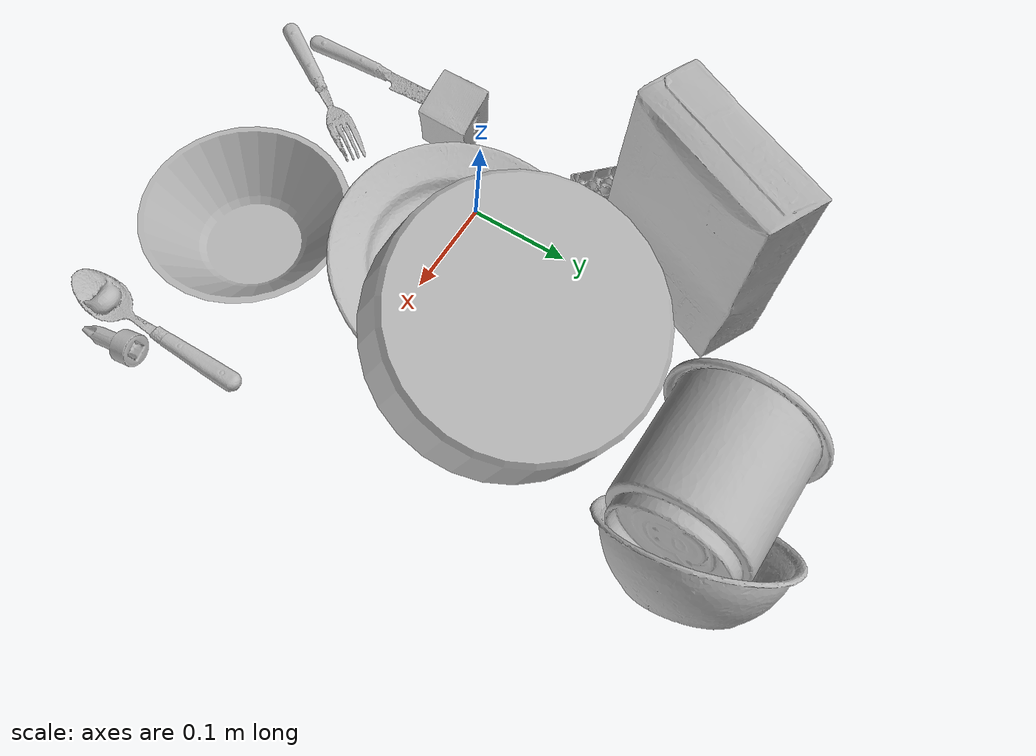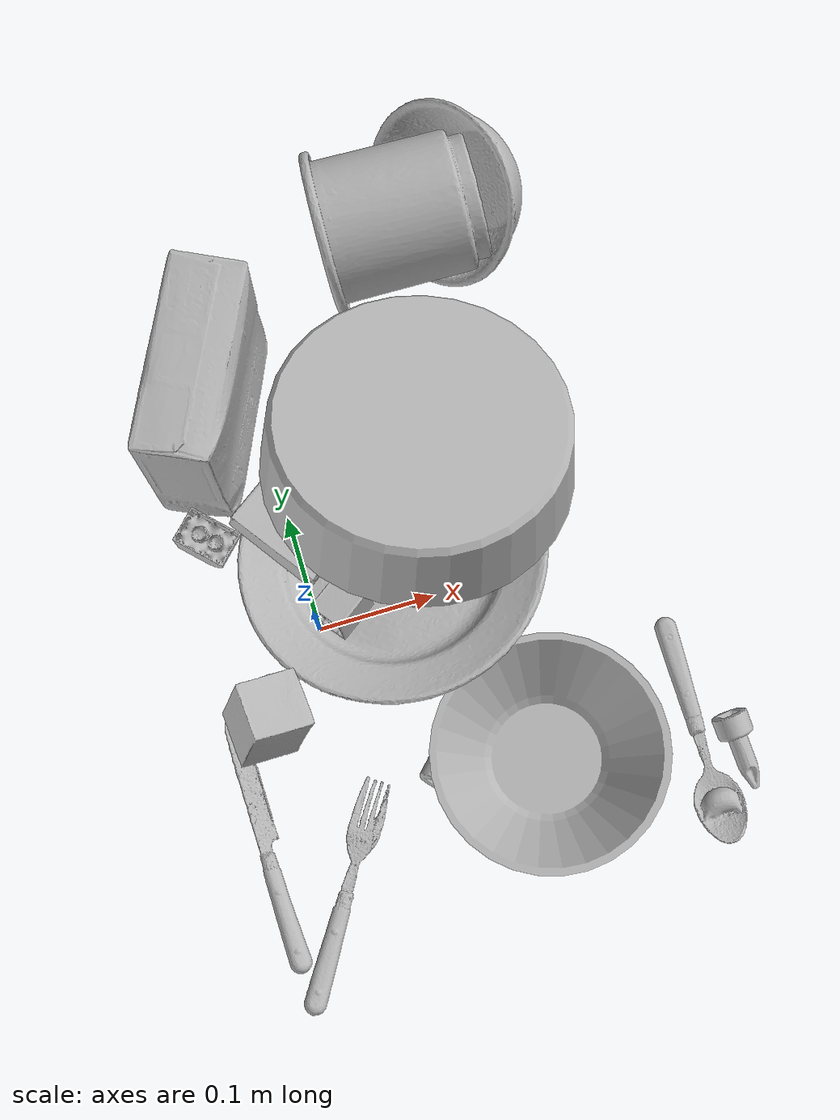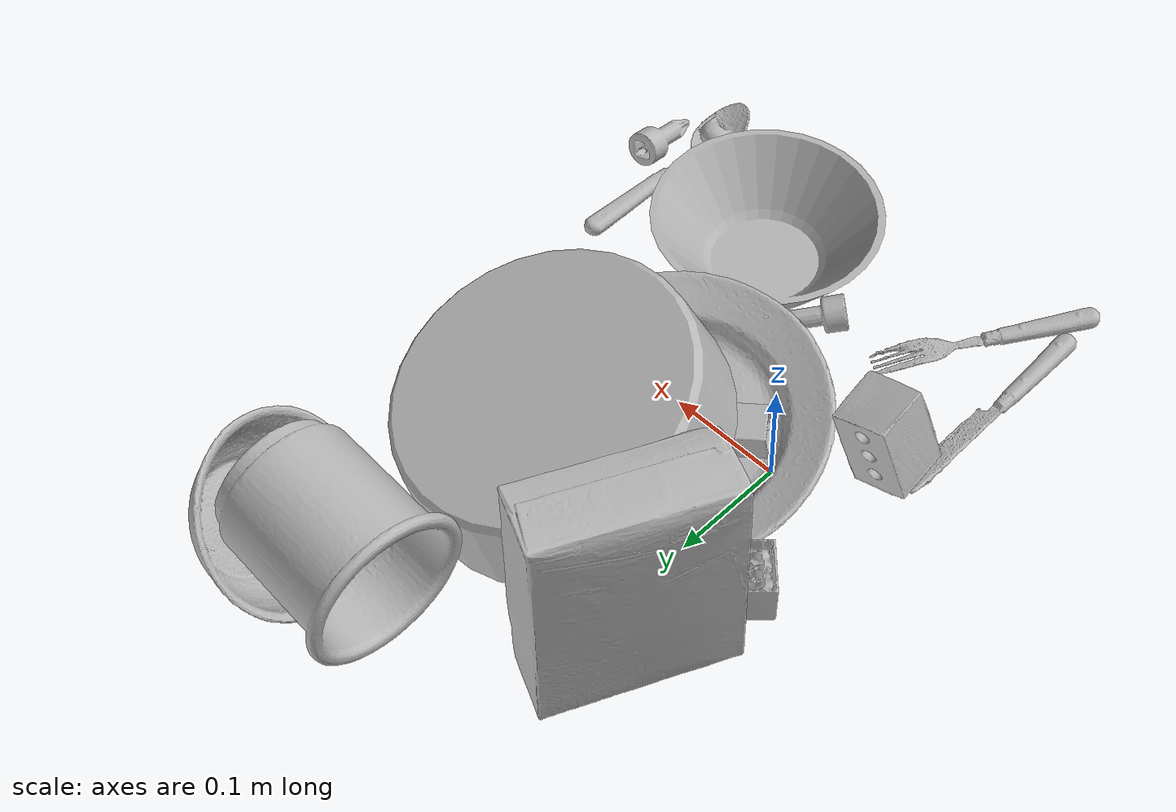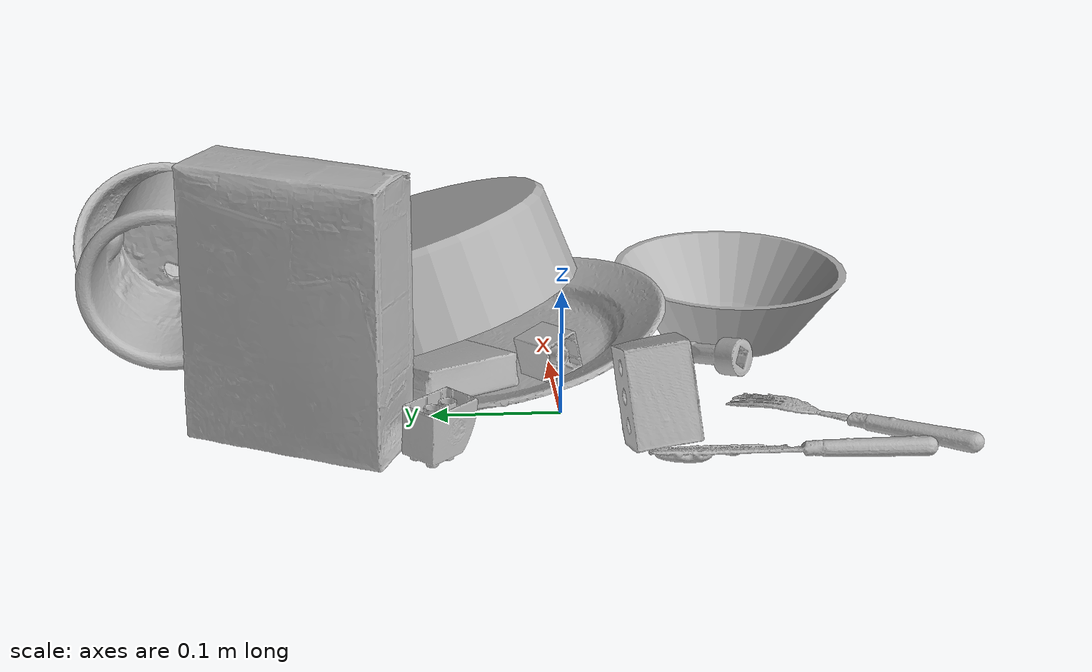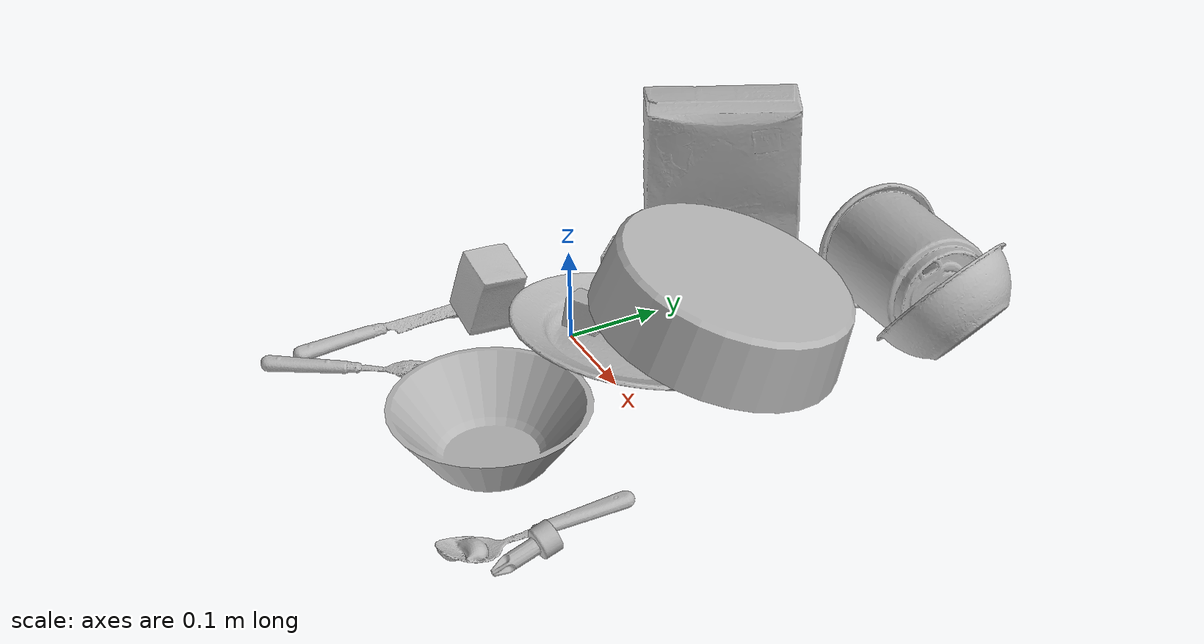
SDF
<sdf version="1.4">
  <world name="default">
    <light name="light1" type="point">
      <pose>0 0 1 0 0 0</pose>
      <diffuse>3 3 3 1</diffuse>
      <specular>3 3 3 1</specular>
    </light>
    <light name="light2" type="point">
      <pose>0 0.5 2 0 0 0</pose>
      <diffuse>1 1 1 1</diffuse>
      <specular>1 1 1 1</specular>
    </light>
    <light name="light3" type="point">
      <pose>0 0.5 2 0 0 0</pose>
      <diffuse>3 3 3 1</diffuse>
      <specular>3 3 3 1</specular>
    </light>
    <scene>
      <ambient>0.7 0.7 0.7</ambient>
    </scene>
    <model name="plate1">
      <link name="link_plate1">
        <collision name="default">
          <geometry>
            <mesh>
              <uri>model://plate/collision_meshes/collision.obj</uri>
              <scale>1.0 1.0 1.0</scale>
            </mesh>
          </geometry>
          <surface>
            <friction>
              <ode>
                <mu>0.5</mu>
                <mu2>0.5</mu2>
              </ode>
            </friction>
          <contact>
        <ode>
            <max_vel>0</max_vel>
            <min_depth>0.0001</min_depth>
            <kp>1e8</kp>
        </ode>
    </contact></surface>
        </collision>
        <visual name="default">
          <geometry>
            <mesh>
              <uri>model://plate/visual_meshes/visual.dae</uri>
              <scale>1.0 1.0 1.0</scale>
            </mesh>
          </geometry>
        </visual>
        <inertial>
          <mass>0.20059238374233246</mass>
          <pose>-0.0006044621695764363 0.00027825910365208983 -0.001056200242601335 0.002218800652723057 -0.0032254723094637602 0.45260588699646775</pose>
          <inertia>
            <ixx>0.00093837525</ixx>
            <iyy>0.0009294</iyy>
            <izz>0.0018353215</izz>
            <ixy>0</ixy>
            <ixz>0</ixz>
            <iyz>0</iyz>
          </inertia>
        </inertial>
      </link>
      <pose>0.07547052204608917 0.0354858860373497 0.030790481716394424 -0.2055248252795435 0.0802258044772621 0.5809903375676666</pose>
    </model>
    <model name="plate2">
      <link name="link_plate2">
        <collision name="default">
          <geometry>
            <mesh>
              <uri>model://pan_tefal/collision_meshes/collision.obj</uri>
              <scale>1.0 1.0 1.0</scale>
            </mesh>
          </geometry>
          <surface>
            <friction>
              <ode>
                <mu>0.5</mu>
                <mu2>0.5</mu2>
              </ode>
            </friction>
          <contact>
        <ode>
            <max_vel>0</max_vel>
            <min_depth>0.0001</min_depth>
            <kp>1e8</kp>
        </ode>
    </contact></surface>
        </collision>
        <visual name="default">
          <geometry>
            <mesh>
              <uri>model://pan_tefal/visual_meshes/visual.dae</uri>
              <scale>1.0 1.0 1.0</scale>
            </mesh>
          </geometry>
        </visual>
        <inertial>
          <mass>0.5801199674606323</mass>
          <pose>-0.00018002555589191616 3.279062366345897e-05 -0.008514936082065105 0.0008190222895173471 -0.0003301392673675887 -0.3318501085377774</pose>
          <inertia>
            <ixx>0.00400454</ixx>
            <iyy>0.004030358</iyy>
            <izz>0.0073715877</izz>
            <ixy>0</ixy>
            <ixz>0</ixz>
            <iyz>0</iyz>
          </inertia>
        </inertial>
      </link>
      <pose>0.12174223363399506 0.11334511637687683 0.07699207216501236 -2.976249166047427 0.26646425382846667 1.7000207753411098</pose>
    </model>
    <model name="bowl1">
      <link name="link_bowl1">
        <collision name="default">
          <geometry>
            <mesh>
              <uri>model://bowl/collision_meshes/collision.obj</uri>
              <scale>1.0 1.0 1.0</scale>
            </mesh>
          </geometry>
          <surface>
            <friction>
              <ode>
                <mu>0.5</mu>
                <mu2>0.5</mu2>
              </ode>
            </friction>
          <contact>
        <ode>
            <max_vel>0</max_vel>
            <min_depth>0.0001</min_depth>
            <kp>1e8</kp>
        </ode>
    </contact></surface>
        </collision>
        <visual name="default">
          <geometry>
            <mesh>
              <uri>model://bowl/visual_meshes/visual.dae</uri>
              <scale>1.0 1.0 1.0</scale>
            </mesh>
          </geometry>
        </visual>
        <inertial>
          <mass>0.055578216910362244</mass>
          <pose>0.00020445502013899386 -0.0010302060982212424 -0.000804265437182039 -0.015764048263850368 0.014546844804774466 0.7140432473852318</pose>
          <inertia>
            <ixx>0.00012766755</ixx>
            <iyy>0.000124815</iyy>
            <izz>0.00021478078</izz>
            <ixy>0</ixy>
            <ixz>0</ixz>
            <iyz>0</iyz>
          </inertia>
        </inertial>
      </link>
      <pose>0.21939724683761597 0.3239825665950775 0.05548424273729324 -0.7046930120790293 -0.6538188214421452 1.2929243899539082</pose>
    </model>
    <model name="bowl2">
      <link name="link_bowl2">
        <collision name="default">
          <geometry>
            <mesh>
              <uri>model://bowl_a/collision_meshes/collision.obj</uri>
              <scale>1.0 1.0 1.0</scale>
            </mesh>
          </geometry>
          <surface>
            <friction>
              <ode>
                <mu>0.5</mu>
                <mu2>0.5</mu2>
              </ode>
            </friction>
          <contact>
        <ode>
            <max_vel>0</max_vel>
            <min_depth>0.0001</min_depth>
            <kp>1e8</kp>
        </ode>
    </contact></surface>
        </collision>
        <visual name="default">
          <geometry>
            <mesh>
              <uri>model://bowl_a/visual_meshes/visual.dae</uri>
              <scale>1.0 1.0 1.0</scale>
            </mesh>
          </geometry>
        </visual>
        <inertial>
          <mass>0.31475314497947693</mass>
          <pose>0.00027867438620887697 4.730821092380211e-05 -0.0013765294570475817 -0.0009805369688078041 -0.0010938258688624044 -0.19123886294168949</pose>
          <inertia>
            <ixx>0.00089611666</ixx>
            <iyy>0.00090161816</iyy>
            <izz>0.0015937777</izz>
            <ixy>0</ixy>
            <ixz>0</ixz>
            <iyz>0</iyz>
          </inertia>
        </inertial>
      </link>
      <pose>0.15111514925956726 -0.15895886719226837 0.03038320317864418 -1.3775636756701418e-05 1.1112096629378552e-05 -1.558360234149441</pose>
    </model>
    <model name="silverware1">
      <link name="link_silverware1">
        <collision name="default">
          <geometry>
            <mesh>
              <uri>model://spoon/collision_meshes/collision.obj</uri>
              <scale>1.0 1.0 1.0</scale>
            </mesh>
          </geometry>
          <surface>
            <friction>
              <ode>
                <mu>0.5</mu>
                <mu2>0.5</mu2>
              </ode>
            </friction>
          <contact>
        <ode>
            <max_vel>0</max_vel>
            <min_depth>0.0001</min_depth>
            <kp>1e8</kp>
        </ode>
    </contact></surface>
        </collision>
        <visual name="default">
          <geometry>
            <mesh>
              <uri>model://spoon/visual_meshes/visual.dae</uri>
              <scale>1.0 1.0 1.0</scale>
            </mesh>
          </geometry>
        </visual>
        <inertial>
          <mass>0.019504988566040993</mass>
          <pose>-0.005526313092559576 -0.0016034174477681518 -0.0007271654321812093 0.03521671064592188 -0.039065845080026425 0.006150613244710899</pose>
          <inertia>
            <ixx>1.0848988e-06</ixx>
            <iyy>7.421582e-05</iyy>
            <izz>7.4750846e-05</izz>
            <ixy>0</ixy>
            <ixz>0</ixz>
            <iyz>0</iyz>
          </inertia>
        </inertial>
      </link>
      <pose>0.279702365398407 -0.17295539379119873 0.008385260589420795 0.0067318734308062225 0.026892985777386143 -1.5852714308781202</pose>
    </model>
    <model name="box1">
      <link name="link_box1">
        <collision name="default">
          <geometry>
            <mesh>
              <uri>model://cracker_box/collision_meshes/collision.obj</uri>
              <scale>1.0 1.0 1.0</scale>
            </mesh>
          </geometry>
          <surface>
            <friction>
              <ode>
                <mu>0.5</mu>
                <mu2>0.5</mu2>
              </ode>
            </friction>
          <contact>
        <ode>
            <max_vel>0</max_vel>
            <min_depth>0.0001</min_depth>
            <kp>1e8</kp>
        </ode>
    </contact></surface>
        </collision>
        <visual name="default">
          <geometry>
            <mesh>
              <uri>model://cracker_box/visual_meshes/visual.dae</uri>
              <scale>1.0 1.0 1.0</scale>
            </mesh>
          </geometry>
        </visual>
        <inertial>
          <mass>2.5078790187835693</mass>
          <pose>0.0009464150061830878 0.00025434247800149024 -0.0017029535956680775 -0.00031620768203149627 -0.01110648960041945 0.002546794303792924</pose>
          <inertia>
            <ixx>0.0063789245</ixx>
            <iyy>0.010532858</iyy>
            <izz>0.015031353</izz>
            <ixy>0</ixy>
            <ixz>0</ixz>
            <iyz>0</iyz>
          </inertia>
        </inertial>
      </link>
      <pose>-0.03390543907880783 0.19668909907341003 0.10737306624650955 -3.0398915116178515 -1.5707096104785343 -0.5566268770675918</pose>
    </model>
    <model name="box2">
      <link name="link_box2">
        <collision name="default">
          <geometry>
            <mesh>
              <uri>model://gelatin_box/collision_meshes/collision.obj</uri>
              <scale>1.0 1.0 1.0</scale>
            </mesh>
          </geometry>
          <surface>
            <friction>
              <ode>
                <mu>0.5</mu>
                <mu2>0.5</mu2>
              </ode>
            </friction>
          <contact>
        <ode>
            <max_vel>0</max_vel>
            <min_depth>0.0001</min_depth>
            <kp>1e8</kp>
        </ode>
    </contact></surface>
        </collision>
        <visual name="default">
          <geometry>
            <mesh>
              <uri>model://gelatin_box/visual_meshes/visual.dae</uri>
              <scale>1.0 1.0 1.0</scale>
            </mesh>
          </geometry>
        </visual>
        <inertial>
          <mass>0.1847851723432541</mass>
          <pose>0.0004319618456065655 0.00011156872642459348 -0.0003640321083366871 -0.001050372098056681 -0.004755818221834168 0.016440563197305347</pose>
          <inertia>
            <ixx>0.00013044327</ixx>
            <iyy>9.317494e-05</iyy>
            <izz>0.0001985637</izz>
            <ixy>0</ixy>
            <ixz>0</ixz>
            <iyz>0</iyz>
          </inertia>
        </inertial>
      </link>
      <pose>0.007087827660143375 0.08891623467206955 0.03332827240228653 -3.062554400390342 0.14392518270485602 0.6517465635329662</pose>
    </model>
    <model name="cup1">
      <link name="link_cup1">
        <collision name="default">
          <geometry>
            <mesh>
              <uri>model://d_cups/collision_meshes/collision.obj</uri>
              <scale>2.0 2.0 2.0</scale>
            </mesh>
          </geometry>
          <surface>
            <friction>
              <ode>
                <mu>0.5</mu>
                <mu2>0.5</mu2>
              </ode>
            </friction>
          <contact>
        <ode>
            <max_vel>0</max_vel>
            <min_depth>0.0001</min_depth>
            <kp>1e8</kp>
        </ode>
    </contact></surface>
        </collision>
        <visual name="default">
          <geometry>
            <mesh>
              <uri>model://d_cups/visual_meshes/visual.dae</uri>
              <scale>2.0 2.0 2.0</scale>
            </mesh>
          </geometry>
        </visual>
        <inertial>
          <mass>0.47328615188598633</mass>
          <pose>0.0016136143822222948 0.0038234798703342676 -0.004533303435891867 0.24012870248045765 -0.247092443015796 0.5942312682521343</pose>
          <inertia>
            <ixx>0.0015850074</ixx>
            <iyy>0.0015804201</iyy>
            <izz>0.0014347013</izz>
            <ixy>0</ixy>
            <ixz>0</ixz>
            <iyz>0</iyz>
          </inertia>
        </inertial>
      </link>
      <pose>0.16095635294914246 0.3073270618915558 0.07578690350055695 1.6551347972311277 -0.6201351403285776 -1.6696799584269553</pose>
    </model>
    <model name="silverware2">
      <link name="link_silverware2">
        <collision name="default">
          <geometry>
            <mesh>
              <uri>model://knife/collision_meshes/collision.obj</uri>
              <scale>1.0 1.0 1.0</scale>
            </mesh>
          </geometry>
          <surface>
            <friction>
              <ode>
                <mu>0.5</mu>
                <mu2>0.5</mu2>
              </ode>
            </friction>
          <contact>
        <ode>
            <max_vel>0</max_vel>
            <min_depth>0.0001</min_depth>
            <kp>1e8</kp>
        </ode>
    </contact></surface>
        </collision>
        <visual name="default">
          <geometry>
            <mesh>
              <uri>model://knife/visual_meshes/visual.dae</uri>
              <scale>1.0 1.0 1.0</scale>
            </mesh>
          </geometry>
        </visual>
        <inertial>
          <mass>0.03430156037211418</mass>
          <pose>-0.02378525398671627 0.0015275129117071629 5.062017953605391e-05 0.07305950900181668 0.01724842494985857 -0.007409825116106198</pose>
          <inertia>
            <ixx>9.736174e-07</ixx>
            <iyy>0.00013178105</iyy>
            <izz>0.00013209462</izz>
            <ixy>0</ixy>
            <ixz>0</ixz>
            <iyz>0</iyz>
          </inertia>
        </inertial>
      </link>
      <pose>-0.09031015634536743 -0.16159924864768982 0.00785052590072155 0.17934707647305193 -0.014018865251626328 1.5830193455637134</pose>
    </model>
    <model name="silverware3">
      <link name="link_silverware3">
        <collision name="default">
          <geometry>
            <mesh>
              <uri>model://fork/collision_meshes/collision.obj</uri>
              <scale>1.0 1.0 1.0</scale>
            </mesh>
          </geometry>
          <surface>
            <friction>
              <ode>
                <mu>0.5</mu>
                <mu2>0.5</mu2>
              </ode>
            </friction>
          <contact>
        <ode>
            <max_vel>0</max_vel>
            <min_depth>0.0001</min_depth>
            <kp>1e8</kp>
        </ode>
    </contact></surface>
        </collision>
        <visual name="default">
          <geometry>
            <mesh>
              <uri>model://fork/visual_meshes/visual.dae</uri>
              <scale>1.0 1.0 1.0</scale>
            </mesh>
          </geometry>
        </visual>
        <inertial>
          <mass>0.014111565425992012</mass>
          <pose>-0.02957005426287651 0.0004658825055230409 0.00032188615296036005 -0.01355195006397287 -0.010977841645129428 0.014453906946454091</pose>
          <inertia>
            <ixx>4.9469025e-07</ixx>
            <iyy>3.684124e-05</iyy>
            <izz>3.7062495e-05</izz>
            <ixy>0</ixy>
            <ixz>0</ixz>
            <iyz>0</iyz>
          </inertia>
        </inertial>
      </link>
      <pose>-0.040479741990566254 -0.21886570751667023 0.007446602918207645 -3.0634993468764455 0.00283594120548233 1.0129445434240365</pose>
    </model>
    <model name="toy1">
      <link name="link_toy1">
        <collision name="default">
          <geometry>
            <mesh>
              <uri>model://b_lego_duplo/collision_meshes/collision.obj</uri>
              <scale>1.0 1.0 1.0</scale>
            </mesh>
          </geometry>
          <surface>
            <friction>
              <ode>
                <mu>0.5</mu>
                <mu2>0.5</mu2>
              </ode>
            </friction>
          <contact>
        <ode>
            <max_vel>0</max_vel>
            <min_depth>0.0001</min_depth>
            <kp>1e8</kp>
        </ode>
    </contact></surface>
        </collision>
        <visual name="default">
          <geometry>
            <mesh>
              <uri>model://b_lego_duplo/visual_meshes/visual.dae</uri>
              <scale>1.0 1.0 1.0</scale>
            </mesh>
          </geometry>
        </visual>
        <inertial>
          <mass>0.029451588168740273</mass>
          <pose>-0.00011053002526750788 -9.152366146736313e-06 0.0019294293597340584 -0.03749525813168218 -0.026353287435260622 0.45191626186006195</pose>
          <inertia>
            <ixx>6.0274892e-06</ixx>
            <iyy>6.0680068e-06</iyy>
            <izz>5.3702943e-06</izz>
            <ixy>0</ixy>
            <ixz>0</ixz>
            <iyz>0</iyz>
          </inertia>
        </inertial>
      </link>
      <pose>0.025332458317279816 0.009084363467991352 0.04050145298242569 1.9585779634072729 -1.3536281931258838 1.8204202457264582</pose>
    </model>
    <model name="toy2">
      <link name="link_toy2">
        <collision name="default">
          <geometry>
            <mesh>
              <uri>model://foam_brick/collision_meshes/collision.obj</uri>
              <scale>1.0 1.0 1.0</scale>
            </mesh>
          </geometry>
          <surface>
            <friction>
              <ode>
                <mu>0.5</mu>
                <mu2>0.5</mu2>
              </ode>
            </friction>
          <contact>
        <ode>
            <max_vel>0</max_vel>
            <min_depth>0.0001</min_depth>
            <kp>1e8</kp>
        </ode>
    </contact></surface>
        </collision>
        <visual name="default">
          <geometry>
            <mesh>
              <uri>model://foam_brick/visual_meshes/visual.dae</uri>
              <scale>1.0 1.0 1.0</scale>
            </mesh>
          </geometry>
        </visual>
        <inertial>
          <mass>0.2443593144416809</mass>
          <pose>-0.0002522472059354186 0.00034584393142722547 -0.0002532101352699101 -0.2940184651969868 0.017274440266988163 -0.0007449890747987857</pose>
          <inertia>
            <ixx>0.00010674072</ixx>
            <iyy>0.00017041703</iyy>
            <izz>0.00017258283</izz>
            <ixy>0</ixy>
            <ixz>0</ixz>
            <iyz>0</iyz>
          </inertia>
        </inertial>
      </link>
      <pose>-0.06083451583981514 -0.06449270248413086 0.042990535497665405 -1.924915132153551 -1.249152496854164 0.4139803572250543</pose>
    </model>
    <model name="toy3">
      <link name="link_toy3">
        <collision name="default">
          <geometry>
            <mesh>
              <uri>model://d_lego_duplo/collision_meshes/collision.obj</uri>
              <scale>1.0 1.0 1.0</scale>
            </mesh>
          </geometry>
          <surface>
            <friction>
              <ode>
                <mu>0.5</mu>
                <mu2>0.5</mu2>
              </ode>
            </friction>
          <contact>
        <ode>
            <max_vel>0</max_vel>
            <min_depth>0.0001</min_depth>
            <kp>1e8</kp>
        </ode>
    </contact></surface>
        </collision>
        <visual name="default">
          <geometry>
            <mesh>
              <uri>model://d_lego_duplo/visual_meshes/visual.dae</uri>
              <scale>1.0 1.0 1.0</scale>
            </mesh>
          </geometry>
        </visual>
        <inertial>
          <mass>0.033699363470077515</mass>
          <pose>0.002830563113093376 0.0001636613014852628 0.0008589802891947329 0.08010879334546937 -0.38355231252286476 0.0010296922462193392</pose>
          <inertia>
            <ixx>6.5236977e-06</ixx>
            <iyy>9.258897e-06</iyy>
            <izz>8.928908e-06</izz>
            <ixy>0</ixy>
            <ixz>0</ixz>
            <iyz>0</iyz>
          </inertia>
        </inertial>
      </link>
      <pose>-0.06833446770906448 0.095543272793293 0.021658221259713173 3.1298224274292687 -0.018654617871349567 2.3521083072861972</pose>
    </model>
    <model name="toy4">
      <link name="link_toy4">
        <collision name="default">
          <geometry>
            <mesh>
              <uri>model://d_toy_airplane/collision_meshes/collision.obj</uri>
              <scale>1.0 1.0 1.0</scale>
            </mesh>
          </geometry>
          <surface>
            <friction>
              <ode>
                <mu>0.5</mu>
                <mu2>0.5</mu2>
              </ode>
            </friction>
          <contact>
        <ode>
            <max_vel>0</max_vel>
            <min_depth>0.0001</min_depth>
            <kp>1e8</kp>
        </ode>
    </contact></surface>
        </collision>
        <visual name="default">
          <geometry>
            <mesh>
              <uri>model://d_toy_airplane/visual_meshes/visual.dae</uri>
              <scale>1.0 1.0 1.0</scale>
            </mesh>
          </geometry>
        </visual>
        <inertial>
          <mass>0.016584575176239014</mass>
          <pose>9.410303027834743e-05 -5.809338472317904e-05 -0.01172809861600399 0.0002669776058846709 0.004678969238403601 0.5194647440200774</pose>
          <inertia>
            <ixx>4.9717323e-06</ixx>
            <iyy>4.975482e-06</iyy>
            <izz>1.5009987e-06</izz>
            <ixy>0</ixy>
            <ixz>0</ixz>
            <iyz>0</iyz>
          </inertia>
        </inertial>
      </link>
      <pose>0.308011919260025 -0.19975139200687408 0.011072084307670593 -1.82272794453961 -0.08089873811767108 -3.0289975817057586</pose>
    </model>
    <model name="toy5">
      <link name="link_toy5">
        <collision name="default">
          <geometry>
            <mesh>
              <uri>model://e_toy_airplane/collision_meshes/collision.obj</uri>
              <scale>1.0 1.0 1.0</scale>
            </mesh>
          </geometry>
          <surface>
            <friction>
              <ode>
                <mu>0.5</mu>
                <mu2>0.5</mu2>
              </ode>
            </friction>
          <contact>
        <ode>
            <max_vel>0</max_vel>
            <min_depth>0.0001</min_depth>
            <kp>1e8</kp>
        </ode>
    </contact></surface>
        </collision>
        <visual name="default">
          <geometry>
            <mesh>
              <uri>model://e_toy_airplane/visual_meshes/visual.dae</uri>
              <scale>1.0 1.0 1.0</scale>
            </mesh>
          </geometry>
        </visual>
        <inertial>
          <mass>0.01714155077934265</mass>
          <pose>0.00011740483023459092 -2.2482887288788334e-05 -0.011187203228473663 0.005518467343725363 0.009228313895921611 0.15041273076279138</pose>
          <inertia>
            <ixx>5.2317982e-06</ixx>
            <iyy>5.178279e-06</iyy>
            <izz>1.5723607e-06</izz>
            <ixy>0</ixy>
            <ixz>0</ixz>
            <iyz>0</iyz>
          </inertia>
        </inertial>
      </link>
      <pose>0.07821615040302277 -0.1296340525150299 0.012311375699937344 -1.7509912192151147 0.25876553014492265 -0.7909161229961867</pose>
    </model>
  <physics type="ode">
      <max_contacts>50</max_contacts>
      <ode>
        <solver>
          <type>quick</type>
          <iters>75</iters>
        </solver>
        <constraints>
          <contact_max_correcting_vel>0</contact_max_correcting_vel>
          <contact_surface_layer>0</contact_surface_layer>
        </constraints>
      </ode>
    </physics></world>
</sdf>
